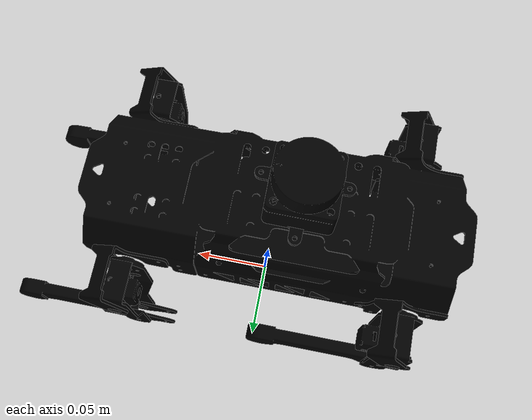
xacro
<?xml version="1.0" encoding="utf-8"?>
<robot name="puppy" xmlns:xacro="http://ros.org/wiki/xacro">
  <xacro:include filename="$(find puppypi_description)/urdf/puppy.transmission.xacro"/>
  <xacro:include filename="$(find puppypi_description)/urdf/puppy.gazebo.xacro"/>
  <xacro:include filename="materials.xacro" />

  <xacro:property name="motor_torque" value="0.5"/>
  <xacro:property name="motor_vec" value="2"/>

  <link name="base_footprint" />
  <joint name="base_joint" type="fixed">
    <parent link="base_footprint" />
    <child link="base_link" />
    <origin xyz="0.0 0.0 0.11" rpy="0 0 0" />
  </joint>

  <link name="base_link" />
  <joint name="dummy_joint" type="fixed">
    <parent link="base_link" />
    <child link="base_dummy" />
    <origin xyz="0.0 0.0 0.0" rpy="0 0 1.57" />
  </joint>

  <link name="lidar_frame">
    <inertial>
      <origin rpy="0 0 0" xyz="8.65086404290248E-05 9.02624664517182E-05 -0.0183546134707293"/>
      <mass value="0.0405423044439003"/>
      <inertia ixx="4.98470777040832E-06" ixy="-1.5407626531037E-07" ixz="2.05182756187779E-09" iyy="5.03926730954594E-06" iyz="1.10062857837226E-08" izz="8.25645669795306E-06"/>
    </inertial>
    <visual>
      <origin rpy="0 0 0" xyz="0 0 0"/>
      <geometry>
        <mesh filename="package://puppypi_description/meshes/lidar_Link.STL"/>
      </geometry>
      <material name="">
        <color rgba="0 0 0 1"/>
      </material>
    </visual>
    <collision>
      <origin rpy="0 0 0" xyz="0 0 0"/>
      <geometry>
        <mesh filename="package://puppypi_description/meshes/lidar_Link.STL"/>
      </geometry>
    </collision>
  </link>
  <joint name="lidar_Joint" type="fixed">
    <origin rpy="0 0 0" xyz="-0.012242 -8.533E-05 0.092501"/>
    <parent link="base_link"/>
    <child link="lidar_frame"/>
    <axis xyz="0 0 0"/>
  </joint>

  <link
    name="base_dummy">
    <inertial>
      <origin
        xyz="-0.000281314271092793 -0.00232093824972492 0.0187442604423227"
        rpy="0 0 0" />
      <mass
        value="0.0656002451111466" />
      <material
        name="black">
      </material>
      <inertia
        ixx="0.0001015640290354"
        ixy="5.44665608405109E-10"
        ixz="-5.74905560030545E-09"
        iyy="4.73014549137098E-05"
        iyz="-4.46099046853099E-06"
        izz="0.000137571042581761" />
    </inertial>
    <visual>
      <origin
        xyz="0 0 0"
        rpy="0 0 0" />
      <geometry>
        <mesh
          filename="package://puppypi_description/meshes/base_link.STL" />
      </geometry>
      <material
        name="black">
      </material>
    </visual>
    <collision>
      <origin
        xyz="0 0 0"
        rpy="0 0 0" />
      <geometry>
        <mesh
          filename="package://puppypi_description/meshes/base_link.STL" />
      </geometry>
    </collision>
  </link>
  <link
    name="lb_link1">
    <inertial>
      <origin
        xyz="0.0139910660045694 0.0129616626428829 -0.0150640859057311"
        rpy="0 0 0" />
      <mass
        value="0.0101534902703093" />
      <inertia
        ixx="4.75129190044601E-06"
        ixy="2.10473016237263E-08"
        ixz="1.88925228411051E-08"
        iyy="2.87659318790812E-06"
        iyz="2.14913235084379E-06"
        izz="2.92897619209419E-06" />
    </inertial>
    <visual>
      <origin
        xyz="0 0 0"
        rpy="0 0 0" />
      <geometry>
        <mesh
          filename="package://puppypi_description/meshes/lb_link1.STL" />
      </geometry>
      <material
        name="black">
      </material>
    </visual>
    <collision>
      <origin
        xyz="0 0 0"
        rpy="0 0 0" />
      <geometry>
        <mesh
          filename="package://puppypi_description/meshes/lb_link1.STL" />
      </geometry>
    </collision>
  </link>
  <joint
    name="lb_joint1"
    type="revolute">
    <origin
      xyz="0.0420105649539 0.0778693100523862 0.0159880060021007"
      rpy="-0.752 0 0" />
    <parent
      link="base_dummy" />
    <child
      link="lb_link1" />
    <axis
      xyz="1 0 0" />
    <limit
      lower="-2"
      upper=" 2"
      effort="${motor_torque}"
      velocity="${motor_vec}" />
  </joint>
  <link
    name="lb_link2">
    <inertial>
      <origin
        xyz="0.00324999997314566 -0.027300410242372 -0.0228963515721465"
        rpy="0 0 0" />
      <mass
        value="0.00545592599136945" />
      <inertia
        ixx="4.05444909185018E-06"
        ixy="1.22817063923314E-15"
        ixz="5.50500791639953E-16"
        iyy="1.97885521739999E-06"
        iyz="-1.87063799891709E-06"
        izz="2.19064599298264E-06" />
    </inertial>
    <visual>
      <origin
        xyz="0 0 0"
        rpy="0 0 0" />
      <geometry>
        <mesh
          filename="package://puppypi_description/meshes/lb_link2.STL" />
      </geometry>
      <material
        name="black">
      </material>
    </visual>
    <collision>
      <origin
        xyz="0 0 0"
        rpy="0 0 0" />
      <geometry>
        <mesh
          filename="package://puppypi_description/meshes/lb_link2.STL" />
      </geometry>
    </collision>
  </link>
  <joint
    name="lb_joint2"
    type="revolute">
    <origin
      xyz="0.0120498902789596 0.0525235728370777 -0.052877465200695"
      rpy="0 0 0" />
    <parent
      link="lb_link1" />
    <child
      link="lb_link2" />
    <axis
      xyz="1 0 0" />
    <limit
      lower="-2"
      upper="2"
      effort="${motor_torque}"
      velocity="${motor_vec}" />
  </joint>
  <link
    name="rb_link1">
    <inertial>
      <origin
        xyz="-0.01399117355691 0.0129616152695224 -0.0150641319628959"
        rpy="0 0 0" />
      <mass
        value="0.0101536236284079" />
      <inertia
        ixx="4.75129811236989E-06"
        ixy="-2.1017569726548E-08"
        ixz="-1.89306363229736E-08"
        iyy="2.87660393694748E-06"
        iyz="2.14913401997947E-06"
        izz="2.92897914074097E-06" />
    </inertial>
    <visual>
      <origin
        xyz="0 0 0"
        rpy="0 0 0" />
      <geometry>
        <mesh
          filename="package://puppypi_description/meshes/rb_link1.STL" />
      </geometry>
      <material
        name="black">
      </material>
    </visual>
    <collision>
      <origin
        xyz="0 0 0"
        rpy="0 0 0" />
      <geometry>
        <mesh
          filename="package://puppypi_description/meshes/rb_link1.STL" />
      </geometry>
    </collision>
  </link>
  <joint
    name="rb_joint1"
    type="revolute">
    <origin
      xyz="-0.0420105649534512 0.0778693100523859 0.0159880060091649"
      rpy="-0.752 0 0" />
    <parent
      link="base_dummy" />
    <child
      link="rb_link1" />
    <axis
      xyz="1 0 0" />
    <limit
      lower="-2"
      upper="2"
      effort="${motor_torque}"
      velocity="${motor_vec}" />
  </joint>
  <link
    name="rb_link2">
    <inertial>
      <origin
        xyz="0.00324999997319507 -0.027300410241394 -0.0228963515708773"
        rpy="0 0 0" />
      <mass
        value="0.00545592599106628" />
      <inertia
        ixx="4.05444909186485E-06"
        ixy="1.22890997212443E-15"
        ixz="5.5049632107985E-16"
        iyy="1.97885521739198E-06"
        iyz="-1.87063799892702E-06"
        izz="2.19064599300475E-06" />
    </inertial>
    <visual>
      <origin
        xyz="0 0 0"
        rpy="0 0 0" />
      <geometry>
        <mesh
          filename="package://puppypi_description/meshes/rb_link2.STL" />
      </geometry>
      <material
        name="black">
      </material>
    </visual>
    <collision>
      <origin
        xyz="0 0 0"
        rpy="0 0 0" />
      <geometry>
        <mesh
          filename="package://puppypi_description/meshes/rb_link2.STL" />
      </geometry>
    </collision>
  </link>
  <joint
    name="rb_joint2"
    type="revolute">
    <origin
      xyz="-0.0185498902789654 0.0525235728370851 -0.0528774652006949"
      rpy="0 0 0" />
    <parent
      link="rb_link1" />
    <child
      link="rb_link2" />
    <axis
      xyz="1 0 0" />
    <limit
      lower="-2"
      upper="2"
      effort="${motor_torque}"
      velocity="${motor_vec}" />
  </joint>
  <link
    name="rf_link1">
    <inertial>
      <origin
        xyz="-0.01399117355409 0.0129616152700151 -0.0150641319635249"
        rpy="0 0 0" />
      <mass
        value="0.0101536236281805" />
      <inertia
        ixx="4.75129811233804E-06"
        ixy="-2.1017569770552E-08"
        ixz="-1.89306363663801E-08"
        iyy="2.87660393692374E-06"
        iyz="2.14913401996578E-06"
        izz="2.9289791407718E-06" />
    </inertial>
    <visual>
      <origin
        xyz="0 0 0"
        rpy="0 0 0" />
      <geometry>
        <mesh
          filename="package://puppypi_description/meshes/rf_link1.STL" />
      </geometry>
      <material
        name="black">
      </material>
    </visual>
    <collision>
      <origin
        xyz="0 0 0"
        rpy="0 0 0" />
      <geometry>
        <mesh
          filename="package://puppypi_description/meshes/rf_link1.STL" />
      </geometry>
    </collision>
  </link>
  <joint
    name="rf_joint1"
    type="revolute">
    <origin
      xyz="-0.0420105469986279 -0.0778692767711234 0.0106512951143373"
      rpy="-0.752 0 0" />
    <parent
      link="base_dummy" />
    <child
      link="rf_link1" />
    <axis
      xyz="1 0 0" />
    <limit
      lower="-2"
      upper="2"
      effort="${motor_torque}"
      velocity="${motor_vec}" />
  </joint>
  <link
    name="rf_link2">
    <inertial>
      <origin
        xyz="0.00324999997320218 -0.0273004102414339 -0.0228963515707321"
        rpy="0 0 0" />
      <mass
        value="0.00545592599108903" />
      <inertia
        ixx="4.05444909185018E-06"
        ixy="1.22817063923314E-15"
        ixz="5.50500791639953E-16"
        iyy="1.97885521739999E-06"
        iyz="-1.87063799891709E-06"
        izz="2.19064599298264E-06" />
    </inertial>
    <visual>
      <origin
        xyz="0 0 0"
        rpy="0 0 0" />
      <geometry>
        <mesh
          filename="package://puppypi_description/meshes/rf_link2.STL" />
      </geometry>
      <material
        name="black">
      </material>
    </visual>
    <collision>
      <origin
        xyz="0 0 0"
        rpy="0 0 0" />
      <geometry>
        <mesh
          filename="package://puppypi_description/meshes/rf_link2.STL" />
      </geometry>
    </collision>
  </link>
  <joint
    name="rf_joint2"
    type="revolute">
    <origin
      xyz="-0.0185498902789602 0.0525235728370692 -0.0528774652007036"
      rpy="0 0 0" />
    <parent
      link="rf_link1" />
    <child
      link="rf_link2" />
    <axis
      xyz="1 0 0" />
    <limit
      lower="-2"
      upper="2"
      effort="${motor_torque}"
      velocity="${motor_vec}" />
  </joint>
  <link
    name="lf_link1">
    <inertial>
      <origin
        xyz="0.013991093009336 0.0129615944298928 -0.0150641278151682"
        rpy="0 0 0" />
      <mass
        value="0.0101536321433225" />
      <inertia
        ixx="4.75131109114716E-06"
        ixy="2.10480769743655E-08"
        ixz="1.88912920202068E-08"
        iyy="2.87660804474965E-06"
        iyz="2.14914102954077E-06"
        izz="2.92898830803666E-06" />
    </inertial>
    <visual>
      <origin
        xyz="0 0 0"
        rpy="0 0 0" />
      <geometry>
        <mesh
          filename="package://puppypi_description/meshes/lf_link1.STL" />
      </geometry>
      <material
        name="black">
      </material>
    </visual>
    <collision>
      <origin
        xyz="0 0 0"
        rpy="0 0 0" />
      <geometry>
        <mesh
          filename="package://puppypi_description/meshes/lf_link1.STL" />
      </geometry>
    </collision>
  </link>
  <joint
    name="lf_joint1"
    type="revolute">
    <origin
      xyz="0.0420105469981795 -0.0778692767711239 0.0106512951072731"
      rpy="-0.752 0 0" />
    <parent
      link="base_dummy" />
    <child
      link="lf_link1" />
    <axis
      xyz="1 0 0" />
    <limit
      lower="-2"
      upper="2"
      effort="${motor_torque}"
      velocity="${motor_vec}" />
  </joint>
  <link
    name="lf_link2">
    <inertial>
      <origin
        xyz="0.003249999973145 -0.0273004102423796 -0.0228963515721502"
        rpy="0 0 0" />
      <mass
        value="0.0054559259913707" />
      <inertia
        ixx="4.05444909186631E-06"
        ixy="1.2230438959744E-15"
        ixz="5.35398811066927E-16"
        iyy="1.97885521740432E-06"
        iyz="-1.87063799891828E-06"
        izz="2.19064599300295E-06" />
    </inertial>
    <visual>
      <origin
        xyz="0 0 0"
        rpy="0 0 0" />
      <geometry>
        <mesh
          filename="package://puppypi_description/meshes/lf_link2.STL" />
      </geometry>
      <material
        name="black">
      </material>
    </visual>
    <collision>
      <origin
        xyz="0 0 0"
        rpy="0 0 0" />
      <geometry>
        <mesh
          filename="package://puppypi_description/meshes/lf_link2.STL" />
      </geometry>
    </collision>
  </link>
  <joint
    name="lf_joint2"
    type="revolute">
    <origin
      xyz="0.0120498902789604 0.0525235728370695 -0.0528774652007036"
      rpy="0 0 0" />
    <parent
      link="lf_link1" />
    <child
      link="lf_link2" />
    <axis
      xyz="1 0 0" />
    <limit
      lower="-2"
      upper="2"
      effort="${motor_torque}"
      velocity="${motor_vec}" />
  </joint>
  <link
    name="camera_link">
    <inertial>
      <origin
        xyz="7.8816314098059E-12 0.00830783337409231 -1.1027486424009E-09"
        rpy="0 0 0" />
      <mass
        value="0.00255589783563972" />
      <inertia
        ixx="8.0750471256965E-08"
        ixy="6.5213060632267E-17"
        ixz="-9.04303283934642E-14"
        iyy="7.57695997997755E-08"
        iyz="1.85813457456822E-15"
        izz="8.93985185103248E-08" />
    </inertial>
    <visual>
      <origin
        xyz="0 0 0"
        rpy="0 0 0" />
      <geometry>
        <mesh
          filename="package://puppypi_description/meshes/camera_link.STL" />
      </geometry>
      <material
        name="black">
      </material>
    </visual>
    <collision>
      <origin
        xyz="0 0 0"
        rpy="0 0 0" />
      <geometry>
        <mesh
          filename="package://puppypi_description/meshes/camera_link.STL" />
      </geometry>
    </collision>
  </link>
  <joint
    name="camera_joint"
    type="fixed">
    <origin
      xyz="0 -0.100686660929431 0.017109543359257"
      rpy="0.0342537604318887 0 0" />
    <parent
      link="base_dummy" />
    <child
      link="camera_link" />
    <axis
      xyz="0 0 0" />
  </joint>

  <link name="lf_link3">
    <inertial>
      <origin
        xyz="0 0 0"
        rpy="0 0 0" />
     <mass
        value="0.0391" />
      <inertia
        ixx="3.7713E-012"
        ixy="0"
        ixz="0"
        iyy="3.5422E-12"
        iyz="0"
        izz="5.443E-012" />
    </inertial>
    <collision>
      <origin
        xyz="0.0032 0 0.001"
        rpy="0 1.57 0" />
      <geometry>
        <cylinder radius="0.0095" length="0.01"/>
      </geometry>
    </collision>
  </link>

  <link name="rf_link3">
    <inertial>
      <origin
        xyz="0 0 0"
        rpy="0 0 0" />
     <mass
        value="0.0391" />
      <inertia
        ixx="3.7713E-012"
        ixy="0"
        ixz="0"
        iyy="3.5422E-12"
        iyz="0"
        izz="5.443E-012" />
    </inertial>
    <collision>
      <origin
        xyz="0.0032 0 0.001"
        rpy="0 1.57 0" />
      <geometry>
        <cylinder radius="0.0095" length="0.01"/>
      </geometry>
    </collision>
  </link>

  <link name="lb_link3">
    <inertial>
      <origin
        xyz="0 0 0"
        rpy="0 0 0" />
     <mass
        value="0.0391" />
      <inertia
        ixx="3.7713E-012"
        ixy="0"
        ixz="0"
        iyy="3.5422E-12"
        iyz="0"
        izz="5.443E-012" />
    </inertial>
    <collision>
      <origin
        xyz="0.0032 0 0.001"
        rpy="0 1.57 0" />
      <geometry>
        <cylinder radius="0.0095" length="0.01"/>
      </geometry>
    </collision>
  </link>

  <link name="rb_link3">
    <inertial>
      <origin
        xyz="0 0 0"
        rpy="0 0 0" />
     <mass
        value="0.0391" />
      <inertia
        ixx="3.7713E-012"
        ixy="0"
        ixz="0"
        iyy="3.5422E-12"
        iyz="0"
        izz="5.443E-012" />
    </inertial>
    <collision>
      <origin
        xyz="0.0032 0 0.001"
        rpy="0 1.57 0" />
      <geometry>
        <cylinder radius="0.0095" length="0.01"/>
      </geometry>
    </collision>
  </link>

  <joint name="lf_joint3"
    type="fixed">
    <origin
      xyz="0 -0.053 -0.053"
      rpy="0.78 0 0" />
    <parent
      link="lf_link2" />
    <child
      link="lf_link3" />
    <axis
      xyz="0 0 0" />
  </joint>

  <joint name="rf_joint3"
    type="fixed">
    <origin
      xyz="0 -0.053 -0.053"
      rpy="0.78 0 0" />
    <parent
      link="rf_link2" />
    <child
      link="rf_link3" />
    <axis
      xyz="0 0 0" />
  </joint>

  <joint name="lb_joint3"
    type="fixed">
    <origin
      xyz="0 -0.053 -0.053"
      rpy="0.78 0 0" />
    <parent
      link="lb_link2" />
    <child
      link="lb_link3" />
    <axis
      xyz="0 0 0" />
  </joint>

  <joint name="rb_joint3"
    type="fixed">
    <origin
      xyz="0 -0.053 -0.053"
      rpy="0.78 0 0" />
    <parent
      link="rb_link2" />
    <child
      link="rb_link3" />
    <axis
      xyz="0 0 0" />
  </joint>
</robot>

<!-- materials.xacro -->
<robot>
  <material name="black">
    <color rgba="0.0 0.0 0.0 1.0"/>
  </material>

  <material name="blue">
    <color rgba="0.0 0.0 0.8 1.0"/>
  </material>

  <material name="green">
    <color rgba="0.0 0.8 0.0 1.0"/>
  </material>

  <material name="gray">
    <color rgba="0.7 0.7 0.7 1.0"/>
  </material>

  <material name="darkgray">
    <color rgba="0.3 0.3 0.3 1.0"/>
  </material>

  <material name="red">
    <color rgba="0.8 0.0 0.0 1.0"/>
  </material>

  <material name="white">
    <color rgba="1.0 1.0 1.0 1.0"/>
  </material>

  <material name="yellow">
    <color rgba="0.8 0.8 0.0 1.0"/>
  </material>
</robot>
